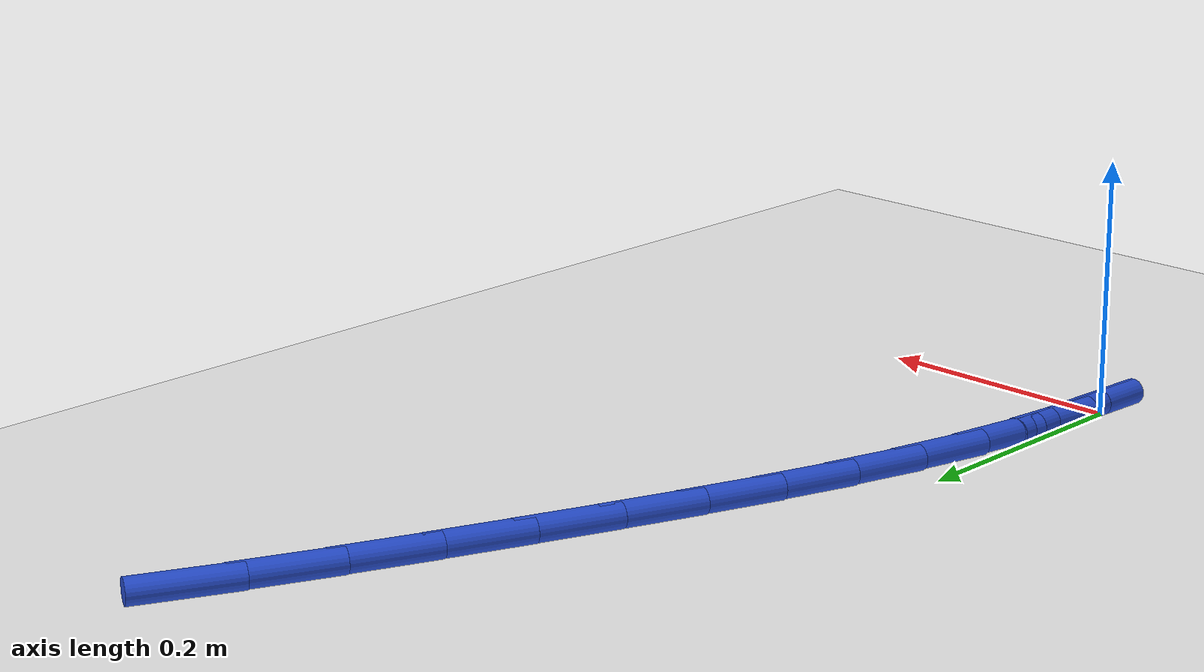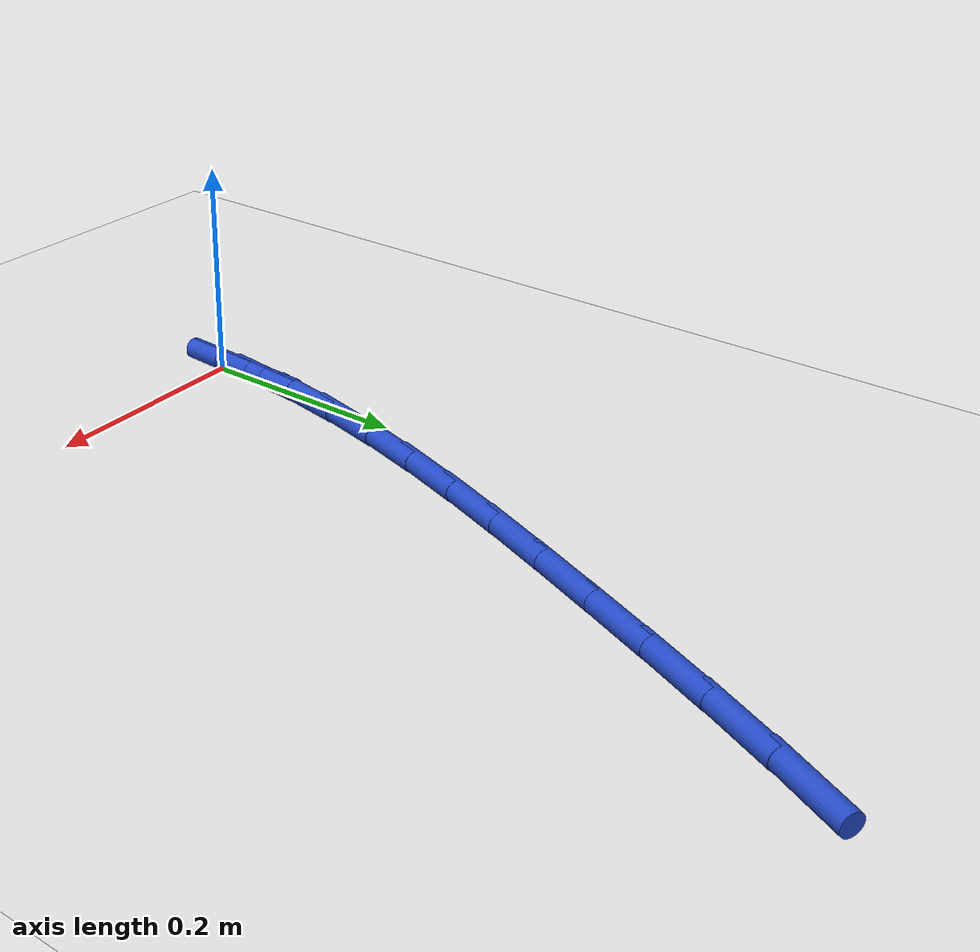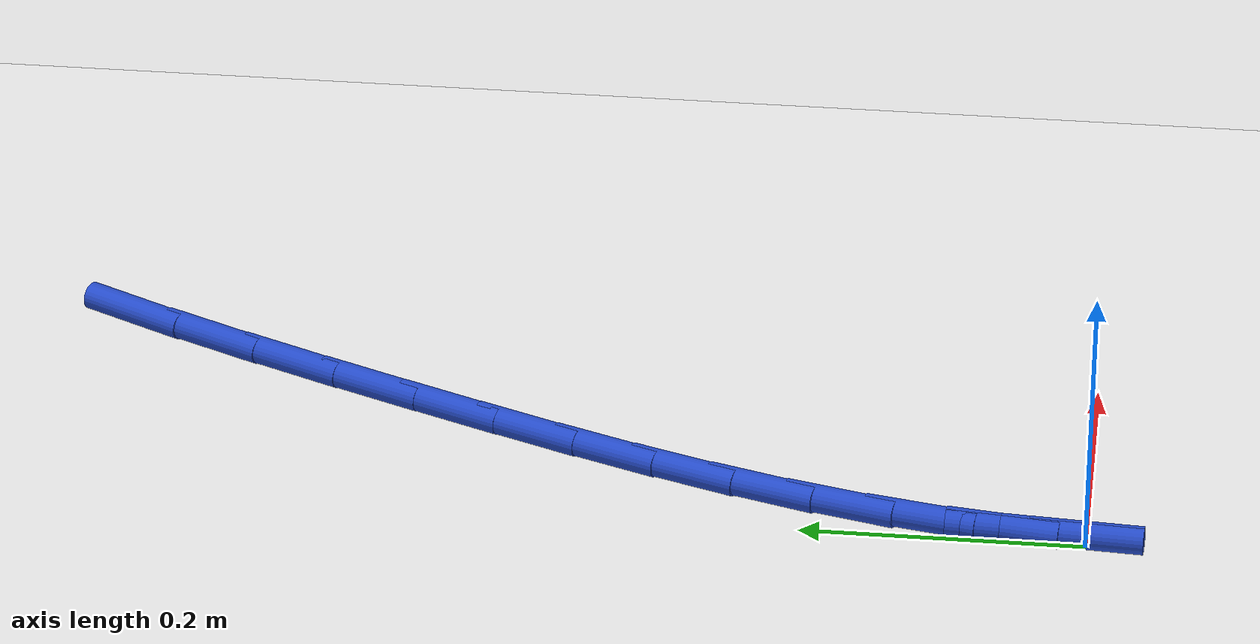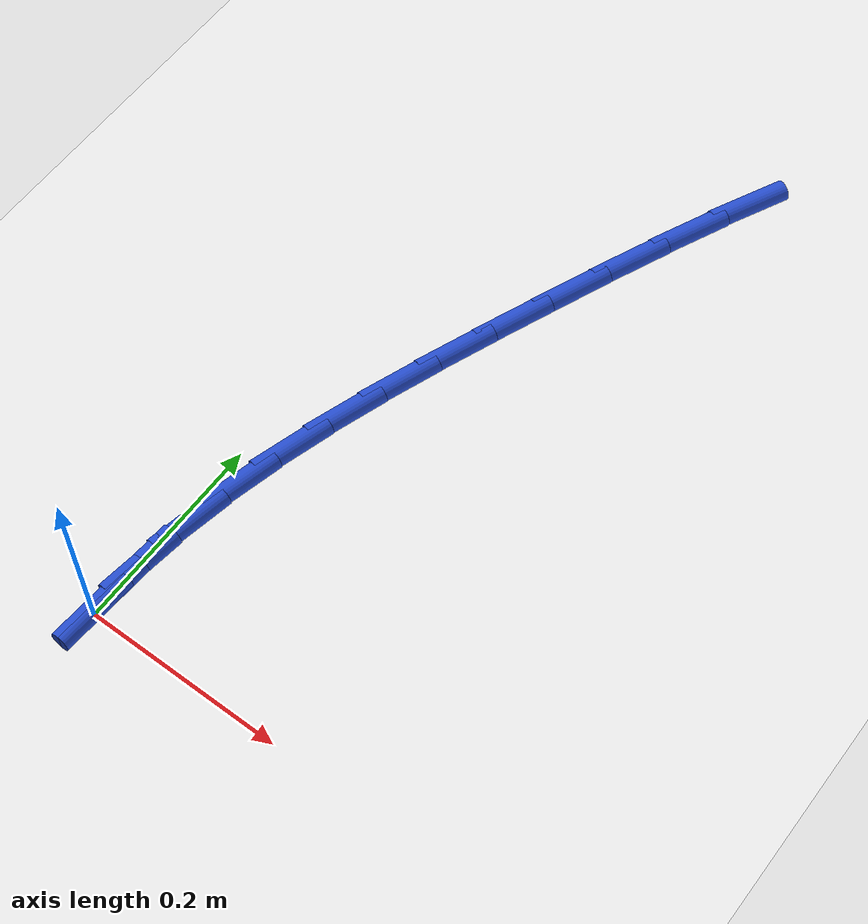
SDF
<sdf version="1.6">
 <world name="default">
  <model name="ground_plane">
   <static>1</static>
   <link name="link">
    <collision name="collision">
     <geometry><plane><normal>0 0 1</normal><size>100 100</size></plane></geometry>
     <surface><friction><ode><mu>100</mu><mu2>50</mu2></ode></friction></surface>
    </collision>
    <visual name="visual">
     <cast_shadows>0</cast_shadows>
     <geometry><plane><normal>0 0 1</normal><size>100 100</size></plane></geometry>
     <material>
      <script><uri>file://media/materials/scripts/gazebo.material</uri><name>Gazebo/WhiteGlow</name></script>
     </material>
    </visual>
   </link>
  </model>
  <model name="line">
   <link name="link_0">
    <pose>-3.8163916471489756e-17 5.551115123125783e-17 0.01 0 1.57 1.5078300519427243</pose>
    <collision name="collision">
     <geometry><cylinder><radius>0.01</radius><length>0.08</length></cylinder></geometry>
    </collision>
    <visual name="visual">
     <material>
      <script><name>Gazebo/Blue</name><uri>file://media/materials/scripts/gazebo.material</uri></script>
     </material>
     <geometry><cylinder><radius>0.01</radius><length>0.08</length></cylinder></geometry>
    </visual>
   </link>
   <link name="link_1">
    <pose>0.0036806510630390888 0.058377051782070956 0.01 0 1.57 1.4400343216359637</pose>
    <collision name="collision">
     <geometry><cylinder><radius>0.01</radius><length>0.08</length></cylinder></geometry>
    </collision>
    <visual name="visual">
     <material>
      <script><name>Gazebo/Blue</name><uri>file://media/materials/scripts/gazebo.material</uri></script>
     </material>
     <geometry><cylinder><radius>0.01</radius><length>0.08</length></cylinder></geometry>
    </visual>
   </link>
   <link name="link_2">
    <pose>0.011234651031709673 0.11581649124005843 0.01 0 1.57 1.378567390247731</pose>
    <collision name="collision">
     <geometry><cylinder><radius>0.01</radius><length>0.08</length></cylinder></geometry>
    </collision>
    <visual name="visual">
     <material>
      <script><name>Gazebo/Blue</name><uri>file://media/materials/scripts/gazebo.material</uri></script>
     </material>
     <geometry><cylinder><radius>0.01</radius><length>0.08</length></cylinder></geometry>
    </visual>
   </link>
   <link name="link_3">
    <pose>0.022295086187393693 0.17264385356368975 0.01 0 1.57 1.324740102810257</pose>
    <collision name="collision">
     <geometry><cylinder><radius>0.01</radius><length>0.08</length></cylinder></geometry>
    </collision>
    <visual name="visual">
     <material>
      <script><name>Gazebo/Blue</name><uri>file://media/materials/scripts/gazebo.material</uri></script>
     </material>
     <geometry><cylinder><radius>0.01</radius><length>0.08</length></cylinder></geometry>
    </visual>
   </link>
   <link name="link_4">
    <pose>0.036495042811473116 0.22918467394269226 0.01 0 1.57 1.2793619042638416</pose>
    <collision name="collision">
     <geometry><cylinder><radius>0.01</radius><length>0.08</length></cylinder></geometry>
    </collision>
    <visual name="visual">
     <material>
      <script><name>Gazebo/Blue</name><uri>file://media/materials/scripts/gazebo.material</uri></script>
     </material>
     <geometry><cylinder><radius>0.01</radius><length>0.08</length></cylinder></geometry>
    </visual>
   </link>
   <link name="link_5">
    <pose>0.05346760718532989 0.2857644875667932 0.01 0 1.57 1.2427873760229213</pose>
    <collision name="collision">
     <geometry><cylinder><radius>0.01</radius><length>0.08</length></cylinder></geometry>
    </collision>
    <visual name="visual">
     <material>
      <script><name>Gazebo/Blue</name><uri>file://media/materials/scripts/gazebo.material</uri></script>
     </material>
     <geometry><cylinder><radius>0.01</radius><length>0.08</length></cylinder></geometry>
    </visual>
   </link>
   <link name="link_6">
    <pose>0.07284586559034606 0.3427088296257201 0.01 0 1.57 1.2150083788427146</pose>
    <collision name="collision">
     <geometry><cylinder><radius>0.01</radius><length>0.08</length></cylinder></geometry>
    </collision>
    <visual name="visual">
     <material>
      <script><name>Gazebo/Blue</name><uri>file://media/materials/scripts/gazebo.material</uri></script>
     </material>
     <geometry><cylinder><radius>0.01</radius><length>0.08</length></cylinder></geometry>
    </visual>
   </link>
   <link name="link_7">
    <pose>0.09426290430790352 0.4003432353091999 0.01 0 1.57 1.1957563957874586</pose>
    <collision name="collision">
     <geometry><cylinder><radius>0.01</radius><length>0.08</length></cylinder></geometry>
    </collision>
    <visual name="visual">
     <material>
      <script><name>Gazebo/Blue</name><uri>file://media/materials/scripts/gazebo.material</uri></script>
     </material>
     <geometry><cylinder><radius>0.01</radius><length>0.08</length></cylinder></geometry>
    </visual>
   </link>
   <link name="link_8">
    <pose>0.11735180961938424 0.45899323980696016 0.01 0 1.57 1.1845194596571686</pose>
    <collision name="collision">
     <geometry><cylinder><radius>0.01</radius><length>0.08</length></cylinder></geometry>
    </collision>
    <visual name="visual">
     <material>
      <script><name>Gazebo/Blue</name><uri>file://media/materials/scripts/gazebo.material</uri></script>
     </material>
     <geometry><cylinder><radius>0.01</radius><length>0.08</length></cylinder></geometry>
    </visual>
   </link>
   <link name="link_9">
    <pose>0.14174833169556453 0.5189783945988165 0.01 0 1.57 1.1758008451751742</pose>
    <collision name="collision">
     <geometry><cylinder><radius>0.01</radius><length>0.08</length></cylinder></geometry>
    </collision>
    <visual name="visual">
     <material>
      <script><name>Gazebo/Blue</name><uri>file://media/materials/scripts/gazebo.material</uri></script>
     </material>
     <geometry><cylinder><radius>0.01</radius><length>0.08</length></cylinder></geometry>
    </visual>
   </link>
   <link name="link_10">
    <pose>0.16727318093834898 0.5802027878308921 0.01 0 1.57 1.16128632647904</pose>
    <collision name="collision">
     <geometry><cylinder><radius>0.01</radius><length>0.08</length></cylinder></geometry>
    </collision>
    <visual name="visual">
     <material>
      <script><name>Gazebo/Blue</name><uri>file://media/materials/scripts/gazebo.material</uri></script>
     </material>
     <geometry><cylinder><radius>0.01</radius><length>0.08</length></cylinder></geometry>
    </visual>
   </link>
   <link name="link_11">
    <pose>0.19404922115470974 0.6418918014204654 0.01 0 1.57 1.1400284914928775</pose>
    <collision name="collision">
     <geometry><cylinder><radius>0.01</radius><length>0.08</length></cylinder></geometry>
    </collision>
    <visual name="visual">
     <material>
      <script><name>Gazebo/Blue</name><uri>file://media/materials/scripts/gazebo.material</uri></script>
     </material>
     <geometry><cylinder><radius>0.01</radius><length>0.08</length></cylinder></geometry>
    </visual>
   </link>
   <link name="link_12">
    <pose>0.22222720335039606 0.7032081762051596 0.01 0 1.57 1.111451151184397</pose>
    <collision name="collision">
     <geometry><cylinder><radius>0.01</radius><length>0.08</length></cylinder></geometry>
    </collision>
    <visual name="visual">
     <material>
      <script><name>Gazebo/Blue</name><uri>file://media/materials/scripts/gazebo.material</uri></script>
     </material>
     <geometry><cylinder><radius>0.01</radius><length>0.08</length></cylinder></geometry>
    </visual>
   </link>
   <link name="link_120">
    <pose>-4.163336342344337e-17 -1.3877787807814457e-17 0.01 0 1.57 1.5063166390686595</pose>
    <collision name="collision">
     <geometry><cylinder><radius>0.01</radius><length>0.08</length></cylinder></geometry>
    </collision>
    <visual name="visual">
     <material>
      <script><name>Gazebo/Blue</name><uri>file://media/materials/scripts/gazebo.material</uri></script>
     </material>
     <geometry><cylinder><radius>0.01</radius><length>0.08</length></cylinder></geometry>
    </visual>
   </link>
   <link name="link_121">
    <pose>0.0037599698186638365 0.05823163311695789 0.01 0 1.57 1.5063166390686595</pose>
    <collision name="collision">
     <geometry><cylinder><radius>0.01</radius><length>0.08</length></cylinder></geometry>
    </collision>
    <visual name="visual">
     <material>
      <script><name>Gazebo/Blue</name><uri>file://media/materials/scripts/gazebo.material</uri></script>
     </material>
     <geometry><cylinder><radius>0.01</radius><length>0.08</length></cylinder></geometry>
    </visual>
   </link>
  </model>
 </world>
</sdf>
